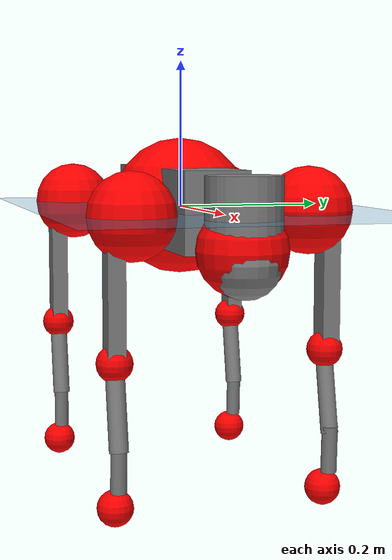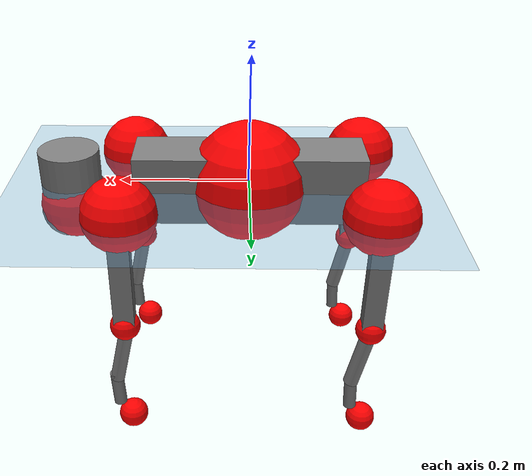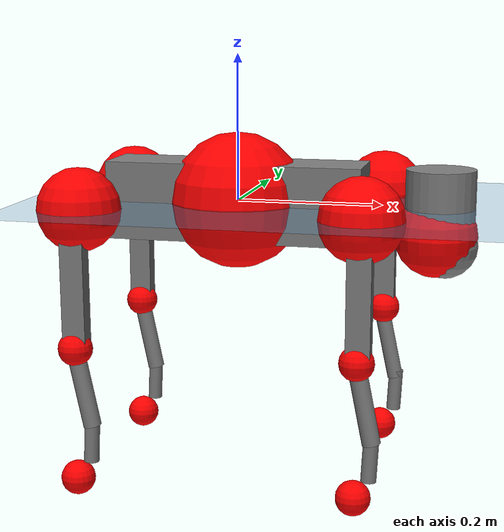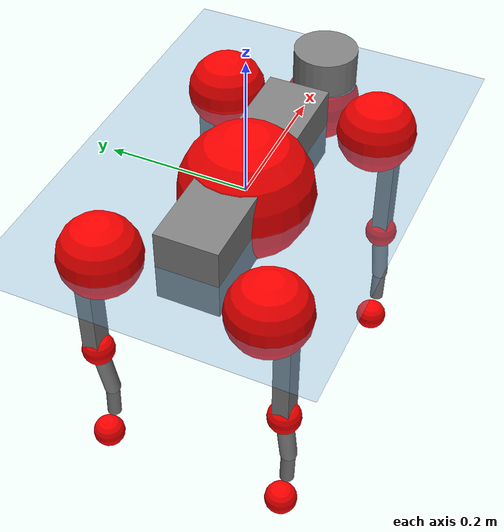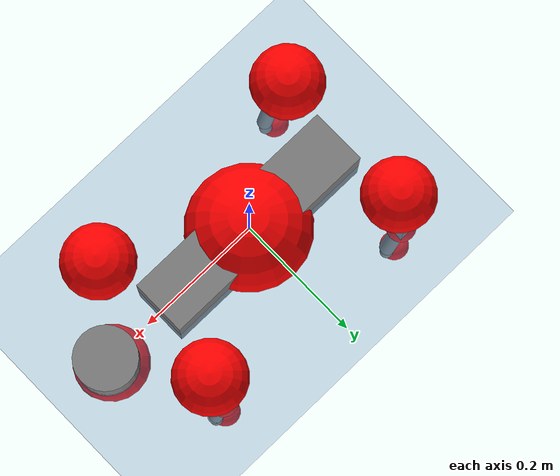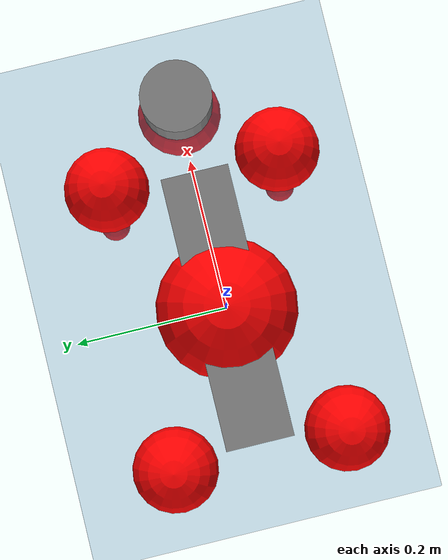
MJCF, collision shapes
<mujoco model="go2">
  <compiler angle="radian" assetdir="assets" balanceinertia="true" inertiafromgeom="false"/>

  <option timestep="0.005" density="1.2" viscosity="2e-05"/>

  <size nkey="1"/>

  <visual>
    <quality shadowsize="8192"/>
    <map shadowclip="0.5"/>
  </visual>

  <default>
    <default class="/">
      <geom contype="0" conaffinity="0" group="1" solref="-1000 -80"/>
      <site size="0.01 0.005 0.005" group="5"/>
      <general forcelimited="true" biastype="affine" gainprm="20" biasprm="0 -20 -0.5"/>
      <default class="go2">
        <joint armature="0.01" damping="0.01" frictionloss="0.2"/>
        <geom condim="1" margin="0.001"/>
        <default class="visual">
          <geom type="mesh" group="2"/>
        </default>
        <default class="collision">
          <geom group="3"/>
          <default class="foot">
            <geom size="0.022 0 0" condim="6" priority="1" friction="0.8 0.02 0.01" solimp="0.015 1 0.022"/>
          </default>
        </default>
        <default class="reward_collision_sphere">
          <geom group="5" rgba="1 0 0 1"/>
        </default>
      </default>
    </default>
  </default>

  <asset>
    <texture type="skybox" colorspace="auto" name="//unnamed_texture_0" builtin="gradient" rgb1="0.95 0.95 0.95" rgb2="0.95 0.95 0.95" width="100" height="600"/>
    <texture type="2d" colorspace="auto" name="texplane" builtin="checker" rgb1="0.345 0.575 0.748" rgb2="0.345 0.575 0.748" markrgb="1 1 1" width="512" height="512"/>
    <material name="MatPlane" class="/" texture="texplane" texuniform="true" texrepeat="2 2" specular="0.9"/>
    <material name="metal" class="/" rgba="0.9 0.95 0.95 1"/>
    <material name="black" class="/" rgba="0 0 0 1"/>
    <material name="white" class="/"/>
    <material name="gray" class="/" rgba="0.671705 0.692426 0.77427 1"/>
    <mesh name="base_0" class="/" file="base_0.obj"/>
    <mesh name="base_1" class="/" file="base_1.obj"/>
    <mesh name="base_2" class="/" file="base_2.obj"/>
    <mesh name="base_3" class="/" file="base_3.obj"/>
    <mesh name="base_4" class="/" file="base_4.obj"/>
    <mesh name="hip_0" class="/" file="hip_0.obj"/>
    <mesh name="hip_1" class="/" file="hip_1.obj"/>
    <mesh name="thigh_0" class="/" file="thigh_0.obj"/>
    <mesh name="thigh_1" class="/" file="thigh_1.obj"/>
    <mesh name="thigh_mirror_0" class="/" file="thigh_mirror_0.obj"/>
    <mesh name="thigh_mirror_1" class="/" file="thigh_mirror_1.obj"/>
    <mesh name="calf_0" class="/" file="calf_0.obj"/>
    <mesh name="calf_1" class="/" file="calf_1.obj"/>
    <mesh name="calf_mirror_0" class="/" file="calf_mirror_0.obj"/>
    <mesh name="calf_mirror_1" class="/" file="calf_mirror_1.obj"/>
    <mesh name="foot" class="/" file="foot.obj"/>
  </asset>

  <worldbody>
    <geom name="floor" class="/" size="100 100 0.125" type="plane" group="0" material="MatPlane"/>
    <light name="toplight_shadow" class="/" pos="0 0 5" dir="0.0990148 0.0990148 -0.990148" type="directional" ambient="0.04 0.04 0.04" diffuse="0.55 0.55 0.55" specular="0.12 0.12 0.12"/>
    <light name="toplight_fill" class="/" pos="0 0 5" dir="0.0990148 0.0990148 -0.990148" type="directional" castshadow="false" ambient="0.04 0.04 0.04" diffuse="0.3 0.3 0.3" specular="0.08 0.08 0.08"/>
    <body name="trunk" childclass="go2" pos="-0.000172404 -0.00108142 0.000545516" quat="1 2.52738e-05 -8.90321e-06 -1.41741e-05">
      <inertial pos="0.0195565 -0.00149318 -0.00458169" quat="-0.00867713 0.70694 -0.00378177 0.707211" mass="5.72046" diaginertia="0.0957814 0.0902845 0.0116459"/>
      <joint name="//unnamed_joint_0" type="free" armature="0" damping="0" frictionloss="0"/>
      <geom name="//unnamed_geom_1" class="visual" material="black" mesh="base_0"/>
      <geom name="//unnamed_geom_2" class="visual" material="black" mesh="base_1"/>
      <geom name="//unnamed_geom_3" class="visual" material="black" mesh="base_2"/>
      <geom name="//unnamed_geom_4" class="visual" material="white" mesh="base_3"/>
      <geom name="//unnamed_geom_5" class="visual" material="gray" mesh="base_4"/>
      <geom name="trunk_1" class="collision" size="0.176964 0.0439823 0.0536255" type="box"/>
      <geom name="trunk_2" class="collision" size="0.0470399 0.0423359" pos="0.278359 0 0.00862733" type="cylinder"/>
      <geom name="trunk_3" class="collision" size="0.0442175" pos="0.286173 0 -0.051764"/>
      <geom name="//unnamed_geom_9" class="reward_collision_sphere" size="0.0940798"/>
      <geom name="//unnamed_geom_10" class="reward_collision_sphere" size="0.0564479" pos="0.273476 0 -0.038823"/>
      <site name="imu" pos="-0.0203913 -0.0014849 0.0311427" size="0.00940798"/>
      <camera name="track" pos="0 -1.96592 0" quat="0.707107 0.707107 0 0" mode="trackcom"/>
      <camera name="ego_camera" pos="0.30473 0 0.038823" quat="-0.5 -0.5 0.5 0.5"/>
      <body name="FL_hip" pos="0.188643 0.0482474 0.00292758" quat="1 8.39296e-05 -0.000586898 -0.000215223">
        <inertial pos="-0.00536179 0.00214505 -0.000413519" quat="0.498721 0.500169 0.50418 0.496902" mass="0.559071" diaginertia="0.000784858 0.000539599 0.000231073"/>
        <joint name="FL_hip_joint" pos="0 0 0" axis="0.999997 0.00246209 -2.2306e-05" stiffness="0.0132153" range="-0.999365 1.03783" armature="0.00925961" damping="0" frictionloss="0.191716"/>
        <geom name="//unnamed_geom_11" class="visual" material="metal" mesh="hip_0"/>
        <geom name="//unnamed_geom_12" class="visual" material="gray" mesh="hip_1"/>
        <geom name="//unnamed_geom_13" class="collision" size="0.0432767 0.018816" pos="0 0.078637 0" quat="0.707107 0.707107 0 0" type="cylinder"/>
        <geom name="//unnamed_geom_14" class="reward_collision_sphere" size="0.0564479" pos="0 0.0688074 0"/>
        <body name="FL_thigh" pos="-0.000587168 0.0960472 0.00233732" quat="1 0.000263104 -0.00018437 0.000111988">
          <inertial pos="-0.00327303 -0.0218264 -0.0280562" quat="0.832672 0.0805602 -0.0251647 0.547297" mass="0.960165" diaginertia="0.00533629 0.00536173 0.000425927"/>
          <joint name="FL_thigh_joint" pos="0 0 0" axis="-0.00680838 0.999927 0.00994113" stiffness="0.00627861" range="-1.58224 3.53482" armature="0.0100556" damping="0.00691062" frictionloss="0.178373"/>
          <geom name="//unnamed_geom_15" class="visual" material="metal" mesh="thigh_0"/>
          <geom name="//unnamed_geom_16" class="visual" material="gray" mesh="thigh_1"/>
          <geom name="//unnamed_geom_17" class="collision" size="0.100195 0.0115248 0.0159936" pos="0 0 -0.091881" quat="0.707107 0 0.707107 0" type="box"/>
          <body name="FL_calf" pos="0.000394532 -0.00281484 -0.182924" quat="1 8.94621e-05 -0.000130692 -0.000159726">
            <inertial pos="0.00651751 -0.000619668 -0.123974" quat="0.71126 0.00198155 -0.00477382 0.70291" mass="0.200152" diaginertia="0.00131021 0.00138218 2.47104e-05"/>
            <joint name="FL_calf_joint" pos="0 0 0" axis="0.000731225 0.999968 -0.00793064" stiffness="0.0011254" range="-2.77031 -0.840389" armature="0.00941405" damping="0.00222802" frictionloss="0.189296"/>
            <geom name="//unnamed_geom_18" class="visual" material="gray" mesh="calf_0"/>
            <geom name="//unnamed_geom_19" class="visual" material="black" mesh="calf_1"/>
            <geom name="FL_calf0" class="collision" size="0.0112896 0.0564479" pos="0.0078136 0 -0.051764" quat="0.994493 0 -0.104807 0" type="cylinder"/>
            <geom name="//unnamed_geom_21" class="collision" size="0.0103488 0.0305759" pos="0.019534 0 -0.127684" quat="0.999688 0 0.0249974 0" type="cylinder"/>
            <geom name="//unnamed_geom_22" class="visual" pos="0 0 -0.183762" quat="1 0 0 0" material="black" mesh="foot"/>
            <geom name="FL_foot" class="foot" size="0.017578" pos="-0.0019534 0 -0.183762"/>
            <geom name="//unnamed_geom_24" class="reward_collision_sphere" size="0.02352"/>
            <geom name="//unnamed_geom_25" class="reward_collision_sphere" size="0.02352" pos="-0.0019534 0 -0.183762"/>
            <site name="FL_foot" class="foot" pos="-0.0019534 0 -0.183762" size="0.00940798"/>
          </body>
        </body>
      </body>
      <body name="FR_hip" pos="0.188837 -0.0455736 -0.00137273" quat="1 -5.64675e-05 4.689e-05 -5.55723e-05">
        <inertial pos="-0.00419508 -0.00162316 -0.00133596" quat="0.497498 0.504757 0.500525 0.497183" mass="0.555872" diaginertia="0.000800384 0.000533463 0.000234514"/>
        <joint name="FR_hip_joint" pos="0 0 0" axis="1 -0.000190794 7.08336e-05" stiffness="0.00598657" range="-1.04876 1.04039" armature="0.00893555" damping="0.0165536" frictionloss="0.178446"/>
        <geom name="//unnamed_geom_26" class="visual" pos="0 1.04739e-09 4.49248e-08" quat="4.63268e-05 1 0 0" material="metal" mesh="hip_0"/>
        <geom name="//unnamed_geom_27" class="visual" pos="0 1.69795e-09 -1.11116e-07" quat="4.63268e-05 1 0 0" material="gray" mesh="hip_1"/>
        <geom name="//unnamed_geom_28" class="collision" size="0.0432767 0.018816" pos="0 -0.078637 0" quat="0.707107 0.707107 0 0" type="cylinder"/>
        <geom name="//unnamed_geom_29" class="reward_collision_sphere" size="0.0564479" pos="0 -0.0688074 0"/>
        <body name="FR_thigh" pos="0.00273258 -0.0917181 0.00248963" quat="1 0.000143245 0.000235135 -0.000239845">
          <inertial pos="-0.00248693 0.0196266 -0.0284383" quat="0.551629 -0.0200283 0.0843307 0.829574" mass="0.984536" diaginertia="0.00541931 0.0054655 0.000433154"/>
          <joint name="FR_thigh_joint" pos="0 0 0" axis="0.00199192 -0.999997 -0.00115977" stiffness="0.00350923" range="-3.53524 1.57172" armature="0.00966606" damping="0.0106896" frictionloss="0.188947"/>
          <geom name="//unnamed_geom_30" class="visual" material="metal" mesh="thigh_mirror_0"/>
          <geom name="//unnamed_geom_31" class="visual" material="gray" mesh="thigh_mirror_1"/>
          <geom name="//unnamed_geom_32" class="collision" size="0.100195 0.0115248 0.0159936" pos="0 0 -0.091881" quat="0.707107 0 0.707107 0" type="box"/>
          <body name="FR_calf" pos="-0.00215385 0.000269727 -0.18379" quat="1 0.000567674 -0.00046601 -0.000438667">
            <inertial pos="0.00514711 0.000772983 -0.121959" quat="0.70349 -0.00452542 0.00153979 0.71069" mass="0.202113" diaginertia="0.00131524 0.00134431 2.50585e-05"/>
            <joint name="FR_calf_joint" pos="0 0 0" axis="-0.0116337 -0.999928 -0.00292413" stiffness="0.000650003" range="0.838993 2.72424" armature="0.0103656" damping="0.0207379" frictionloss="0.173036"/>
            <geom name="//unnamed_geom_33" class="visual" material="gray" mesh="calf_mirror_0"/>
            <geom name="//unnamed_geom_34" class="visual" material="black" mesh="calf_mirror_1"/>
            <geom name="FR_calf0" class="collision" size="0.0122304 0.0564479" pos="0.009767 0 -0.051764" quat="0.995004 0 -0.0998334 0" type="cylinder"/>
            <geom name="//unnamed_geom_36" class="collision" size="0.0103488 0.0305759" pos="0.019534 0 -0.127684" quat="0.999688 0 0.0249974 0" type="cylinder"/>
            <geom name="//unnamed_geom_37" class="visual" pos="0 0 -0.183762" quat="1 0 0 0" material="black" mesh="foot"/>
            <geom name="FR_foot" class="foot" size="0.0214973" pos="-0.0019534 0 -0.183762"/>
            <geom name="//unnamed_geom_39" class="reward_collision_sphere" size="0.02352"/>
            <geom name="//unnamed_geom_40" class="reward_collision_sphere" size="0.02352" pos="-0.0019534 0 -0.183762"/>
            <site name="FR_foot" class="foot" pos="-0.0019534 0 -0.183762" size="0.00940798"/>
          </body>
        </body>
      </body>
      <body name="RL_hip" pos="-0.188621 0.0459404 2.88552e-05" quat="1 -0.000123406 -5.08035e-05 -2.27442e-05">
        <inertial pos="0.0054682 0.000908686 -0.000104054" quat="0.508487 0.499265 0.494099 0.498039" mass="0.551508" diaginertia="0.000778094 0.000540466 0.000226585"/>
        <joint name="RL_hip_joint" pos="0 0 0" axis="-0.999949 -0.0100462 0.000390707" stiffness="0.00527517" range="-1.05822 1.06437" armature="0.00942192" damping="0.00998381" frictionloss="0.185996"/>
        <geom name="//unnamed_geom_41" class="visual" pos="-9.92834e-10 0 -1.94618e-07" quat="4.63268e-05 0 1 0" material="metal" mesh="hip_0"/>
        <geom name="//unnamed_geom_42" class="visual" pos="-1.6095e-09 0 -1.72599e-07" quat="4.63268e-05 0 1 0" material="gray" mesh="hip_1"/>
        <geom name="//unnamed_geom_43" class="collision" size="0.0432767 0.018816" pos="0 0.078637 0" quat="0.707107 0.707107 0 0" type="cylinder"/>
        <geom name="//unnamed_geom_44" class="reward_collision_sphere" size="0.0564479" pos="0 0.0688074 0"/>
        <body name="RL_thigh" pos="-0.000121064 0.0935954 -0.00174254" quat="1 -6.06194e-06 -0.000125761 -6.14747e-05">
          <inertial pos="-0.00339994 -0.0223762 -0.0304231" quat="0.829853 0.0838605 -0.019638 0.551295" mass="0.975986" diaginertia="0.00526929 0.00522802 0.000411757"/>
          <joint name="RL_thigh_joint" pos="0 0 0" axis="-0.00768139 0.99997 -0.000381454" range="-0.543245 4.53551" armature="0.00983745" damping="0.000637808" frictionloss="0.183095"/>
          <geom name="//unnamed_geom_45" class="visual" material="metal" mesh="thigh_0"/>
          <geom name="//unnamed_geom_46" class="visual" material="gray" mesh="thigh_1"/>
          <geom name="//unnamed_geom_47" class="collision" size="0.100195 0.0115248 0.0159936" pos="0 0 -0.091881" quat="0.707107 0 0.707107 0" type="box"/>
          <body name="RL_calf" pos="-0.000248062 -0.00304151 -0.184722" quat="1 0.000205449 -0.000225366 0.000210836">
            <inertial pos="0.00561154 -0.000556676 -0.122223" quat="0.710721 0.00229174 -0.00545953 0.703449" mass="0.200705" diaginertia="0.00135157 0.00133716 2.53281e-05"/>
            <joint name="RL_calf_joint" pos="0 0 0" axis="-0.000304102 0.999998 0.00211165" range="-2.67423 -0.856001" armature="0.0093368" damping="0.00668735" frictionloss="0.191377"/>
            <geom name="//unnamed_geom_48" class="visual" material="gray" mesh="calf_0"/>
            <geom name="//unnamed_geom_49" class="visual" material="black" mesh="calf_1"/>
            <geom name="RL_calf0" class="collision" size="0.0122304 0.0564479" pos="0.009767 0 -0.051764" quat="0.995004 0 -0.0998334 0" type="cylinder"/>
            <geom name="//unnamed_geom_51" class="collision" size="0.0103488 0.0305759" pos="0.019534 0 -0.127684" quat="0.999688 0 0.0249974 0" type="cylinder"/>
            <geom name="//unnamed_geom_52" class="visual" pos="0 0 -0.183762" quat="1 0 0 0" material="black" mesh="foot"/>
            <geom name="RL_foot" class="foot" size="0.0171361" pos="-0.0019534 0 -0.183762"/>
            <geom name="//unnamed_geom_54" class="reward_collision_sphere" size="0.02352"/>
            <geom name="//unnamed_geom_55" class="reward_collision_sphere" size="0.02352" pos="-0.0019534 0 -0.183762"/>
            <site name="RL_foot" class="foot" pos="-0.0019534 0 -0.183762" size="0.00940798"/>
          </body>
        </body>
      </body>
      <body name="RR_hip" pos="-0.189044 -0.0469657 -0.0016497" quat="1 1.8452e-05 -0.000298273 -0.000683024">
        <inertial pos="0.00472021 -0.000295835 -0.000184611" quat="0.500766 0.498404 0.497785 0.503028" mass="0.563449" diaginertia="0.000792296 0.000538085 0.000234549"/>
        <joint name="RR_hip_joint" pos="0 0 0" axis="-0.999956 -0.00444928 -0.00825572" range="-1.05617 1.00817" armature="0.00935756" damping="0.00552048" frictionloss="0.193239"/>
        <geom name="//unnamed_geom_56" class="visual" pos="9.93051e-10 1.04739e-09 -2.39543e-07" quat="2.14617e-09 4.63268e-05 4.63268e-05 -1" material="metal" mesh="hip_0"/>
        <geom name="//unnamed_geom_57" class="visual" pos="1.60897e-09 1.69795e-09 -6.14824e-08" quat="2.14617e-09 4.63268e-05 4.63268e-05 -1" material="gray" mesh="hip_1"/>
        <geom name="//unnamed_geom_58" class="collision" size="0.0432767 0.018816" pos="0 -0.078637 0" quat="0.707107 0.707107 0 0" type="cylinder"/>
        <geom name="//unnamed_geom_59" class="reward_collision_sphere" size="0.0564479" pos="0 -0.0688074 0"/>
        <body name="RR_thigh" pos="0.000183434 -0.0930961 -0.000354382" quat="1 0.000542726 -0.000400327 -0.000513177">
          <inertial pos="-0.00335953 0.0200379 -0.0282887" quat="0.552485 -0.0218636 0.0848459 0.828905" mass="0.962656" diaginertia="0.00533125 0.00535964 0.000420581"/>
          <joint name="RR_thigh_joint" pos="0 0 0" axis="-0.00329741 -0.999966 -0.0075433" stiffness="0.000474109" range="-4.53332 0.519107" armature="0.00925959" damping="0.0178433" frictionloss="0.187654"/>
          <geom name="//unnamed_geom_60" class="visual" material="metal" mesh="thigh_mirror_0"/>
          <geom name="//unnamed_geom_61" class="visual" material="gray" mesh="thigh_mirror_1"/>
          <geom name="//unnamed_geom_62" class="collision" size="0.100195 0.0115248 0.0159936" pos="0 0 -0.091881" quat="0.707107 0 0.707107 0" type="box"/>
          <body name="RR_calf" pos="-0.00198627 -0.000858162 -0.184962" quat="1 -0.000353663 3.57139e-05 2.68626e-05">
            <inertial pos="0.00839637 0.000690447 -0.12166" quat="0.701266 -0.00105094 0.0036356 0.712889" mass="0.199255" diaginertia="0.0013526 0.00135332 2.52119e-05"/>
            <joint name="RR_calf_joint" pos="0 0 0" axis="-0.00390795 -0.999957 -0.00843238" range="0.812835 2.76859" armature="0.00851297" damping="0.00632048" frictionloss="0.186328"/>
            <geom name="//unnamed_geom_63" class="visual" material="gray" mesh="calf_mirror_0"/>
            <geom name="//unnamed_geom_64" class="visual" material="black" mesh="calf_mirror_1"/>
            <geom name="RR_calf0" class="collision" size="0.0122304 0.0564479" pos="0.009767 0 -0.051764" quat="0.995004 0 -0.0998334 0" type="cylinder"/>
            <geom name="//unnamed_geom_66" class="collision" size="0.0103488 0.0305759" pos="0.019534 0 -0.127684" quat="0.999688 0 0.0249974 0" type="cylinder"/>
            <geom name="//unnamed_geom_67" class="visual" pos="0 0 -0.183762" quat="1 0 0 0" material="black" mesh="foot"/>
            <geom name="RR_foot" class="foot" size="0.0201316" pos="-0.0019534 0 -0.183762"/>
            <geom name="//unnamed_geom_69" class="reward_collision_sphere" size="0.02352"/>
            <geom name="//unnamed_geom_70" class="reward_collision_sphere" size="0.02352" pos="-0.0019534 0 -0.183762"/>
            <site name="RR_foot" class="foot" pos="-0.0019534 0 -0.183762" size="0.00940798"/>
          </body>
        </body>
      </body>
    </body>
  </worldbody>

  <contact>
    <pair class="/" geom1="floor" geom2="FL_foot" name="//unnamed_contact_0"/>
    <pair class="/" geom1="floor" geom2="FR_foot" name="//unnamed_contact_1"/>
    <pair class="/" geom1="floor" geom2="RL_foot" name="//unnamed_contact_2"/>
    <pair class="/" geom1="floor" geom2="RR_foot" name="//unnamed_contact_3"/>
  </contact>

  <actuator>
    <general name="FL_hip" class="/" joint="FL_hip_joint" forcerange="-24.3137 24.3137" gainprm="19.9239" biasprm="0 -19.9239 -0.458975"/>
    <general name="FL_thigh" class="/" joint="FL_thigh_joint" forcerange="-22.2 22.2" gainprm="19.9239" biasprm="0 -19.9239 -0.458975"/>
    <general name="FL_calf" class="/" joint="FL_calf_joint" forcerange="-44.0155 44.0155" gainprm="19.9239" biasprm="0 -19.9239 -0.458975"/>
    <general name="FR_hip" class="/" joint="FR_hip_joint" forcerange="-24.0437 24.0437" gainprm="19.9239" biasprm="0 -19.9239 -0.458975"/>
    <general name="FR_thigh" class="/" joint="FR_thigh_joint" forcerange="-24.0586 24.0586" gainprm="19.9239" biasprm="0 -19.9239 -0.458975"/>
    <general name="FR_calf" class="/" joint="FR_calf_joint" forcerange="-43.25 43.25" gainprm="19.9239" biasprm="0 -19.9239 -0.458975"/>
    <general name="RL_hip" class="/" joint="RL_hip_joint" forcerange="-22.7778 22.7778" gainprm="19.9239" biasprm="0 -19.9239 -0.458975"/>
    <general name="RL_thigh" class="/" joint="RL_thigh_joint" forcerange="-22.54 22.54" gainprm="19.9239" biasprm="0 -19.9239 -0.458975"/>
    <general name="RL_calf" class="/" joint="RL_calf_joint" forcerange="-43.2507 43.2507" gainprm="19.9239" biasprm="0 -19.9239 -0.458975"/>
    <general name="RR_hip" class="/" joint="RR_hip_joint" forcerange="-20.3642 20.3642" gainprm="19.9239" biasprm="0 -19.9239 -0.458975"/>
    <general name="RR_thigh" class="/" joint="RR_thigh_joint" forcerange="-21.9756 21.9756" gainprm="19.9239" biasprm="0 -19.9239 -0.458975"/>
    <general name="RR_calf" class="/" joint="RR_calf_joint" forcerange="-42.8227 42.8227" gainprm="19.9239" biasprm="0 -19.9239 -0.458975"/>
  </actuator>

  <sensor>
    <gyro site="imu" name="imu_angular_velocity"/>
    <velocimeter site="imu" name="imu_linear_velocity"/>
    <framelinvel objtype="site" objname="FL_foot" name="FL_foot_global_linear_velocity"/>
    <framelinvel objtype="site" objname="FR_foot" name="FR_foot_global_linear_velocity"/>
    <framelinvel objtype="site" objname="RL_foot" name="RL_foot_global_linear_velocity"/>
    <framelinvel objtype="site" objname="RR_foot" name="RR_foot_global_linear_velocity"/>
  </sensor>

  <keyframe>
    <key name="home" qpos="0 0 0.325 1 0 0 0 0.1 0.8 -1.5 -0.1 -0.8 1.5 -0.1 0.8 -1.5 0.1 -0.8 1.5"/>
  </keyframe>
</mujoco>
